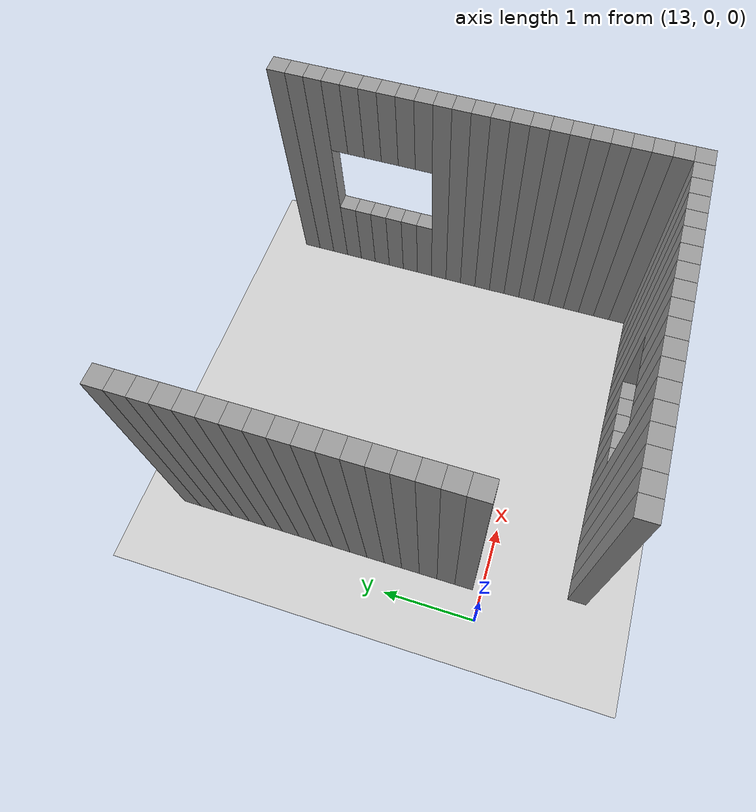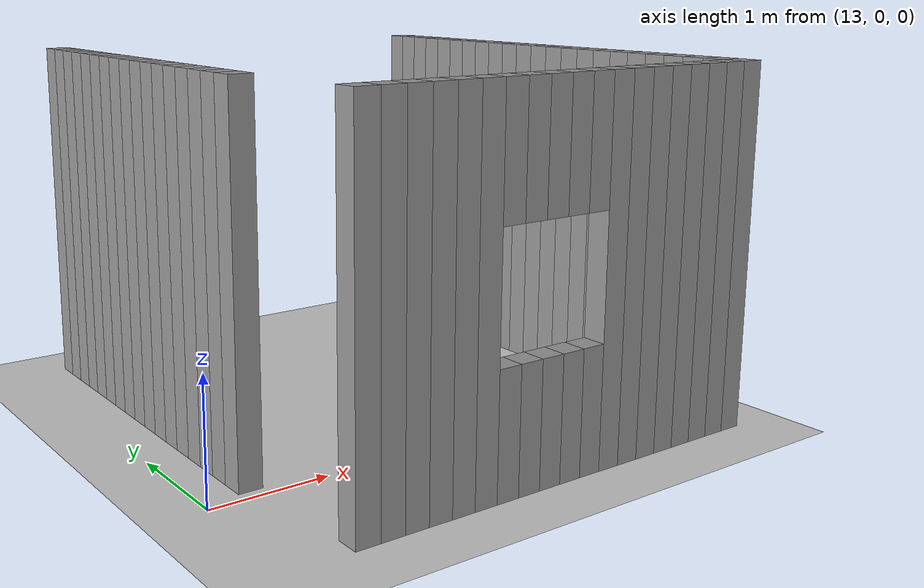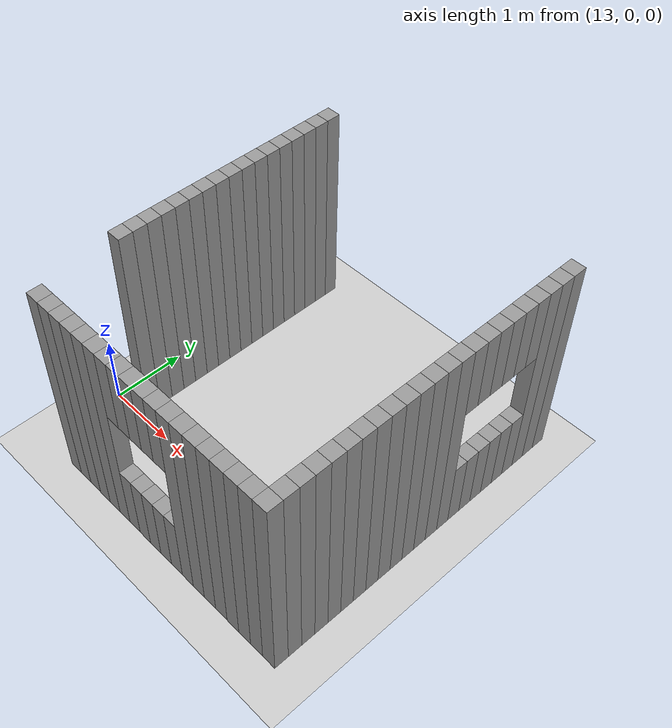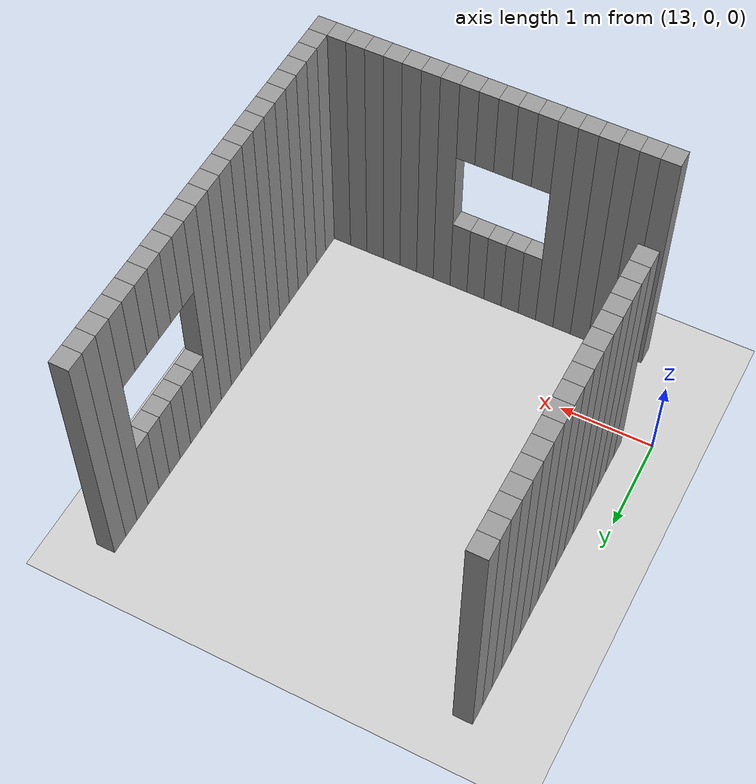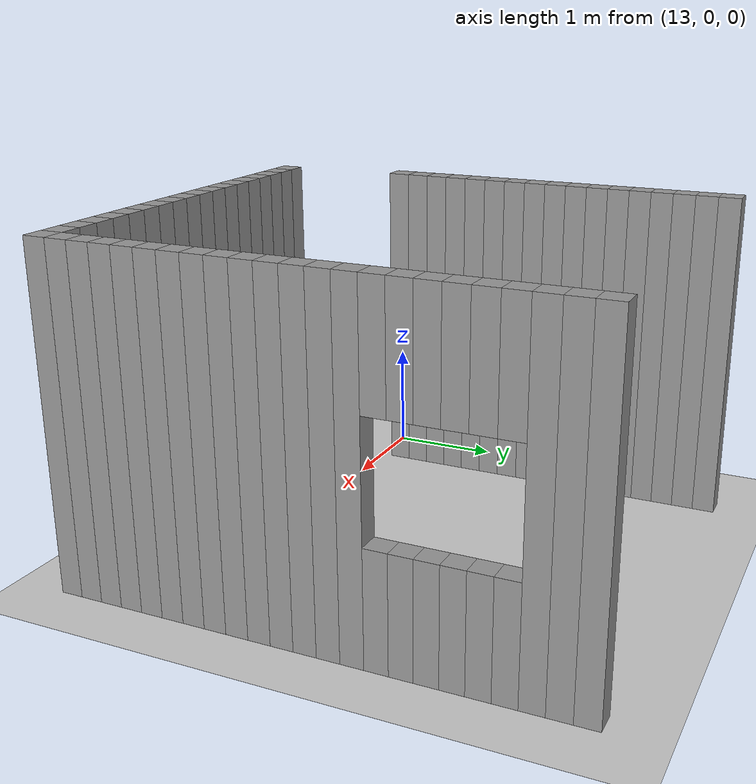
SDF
<sdf version="1.7">
 <world name="default">
  <model name="ground_plane">
   <static>1</static>
   <link name="link">
    <collision name="collision">
     <geometry><plane><normal>0 0 1</normal><size>100 100</size></plane></geometry>
     <surface>
      <contact><collide_bitmask>65535</collide_bitmask></contact>
      <friction><ode><mu>100</mu><mu2>50</mu2></ode></friction>
     </surface>
    </collision>
    <visual name="visual">
     <cast_shadows>0</cast_shadows>
     <geometry><plane><normal>0 0 1</normal><size>100 100</size></plane></geometry>
     <material>
      <script><uri>file://media/materials/scripts/gazebo.material</uri><name>Gazebo/Grey</name></script>
     </material>
    </visual>
   </link>
  </model>
  <model name="05222">
   <pose>-1 -1 0 0 -0 0</pose>
   <link name="Wall_95">
    <collision name="Wall_95_Collision">
     <geometry><box><size>0.2 0.2 3</size></box></geometry>
     <pose>0 0 1.5 0 -0 0</pose>
    </collision>
    <visual name="Wall_95_Visual">
     <pose>0 0 1.5 0 -0 0</pose>
     <geometry><box><size>0.2 0.2 3</size></box></geometry>
     <material>
      <script><uri>file://media/materials/scripts/gazebo.material</uri><name>Gazebo/Grey</name></script>
      <ambient>1 1 1 1</ambient>
     </material>
     <meta><layer>0</layer></meta>
    </visual>
    <pose>14.600000000000001 0.0 0 0 -0 0</pose>
   </link>
   <link name="Wall_96">
    <collision name="Wall_96_Collision">
     <geometry><box><size>0.2 0.2 3</size></box></geometry>
     <pose>0 0 1.5 0 -0 0</pose>
    </collision>
    <visual name="Wall_96_Visual">
     <pose>0 0 1.5 0 -0 0</pose>
     <geometry><box><size>0.2 0.2 3</size></box></geometry>
     <material>
      <script><uri>file://media/materials/scripts/gazebo.material</uri><name>Gazebo/Grey</name></script>
      <ambient>1 1 1 1</ambient>
     </material>
     <meta><layer>0</layer></meta>
    </visual>
    <pose>14.8 0.0 0 0 -0 0</pose>
   </link>
   <link name="Wall_97">
    <collision name="Wall_97_Collision">
     <geometry><box><size>0.2 0.2 3</size></box></geometry>
     <pose>0 0 1.5 0 -0 0</pose>
    </collision>
    <visual name="Wall_97_Visual">
     <pose>0 0 1.5 0 -0 0</pose>
     <geometry><box><size>0.2 0.2 3</size></box></geometry>
     <material>
      <script><uri>file://media/materials/scripts/gazebo.material</uri><name>Gazebo/Grey</name></script>
      <ambient>1 1 1 1</ambient>
     </material>
     <meta><layer>0</layer></meta>
    </visual>
    <pose>15.0 0.0 0 0 -0 0</pose>
   </link>
   <link name="Wall_98">
    <collision name="Wall_98_Collision">
     <geometry><box><size>0.2 0.2 3</size></box></geometry>
     <pose>0 0 1.5 0 -0 0</pose>
    </collision>
    <visual name="Wall_98_Visual">
     <pose>0 0 1.5 0 -0 0</pose>
     <geometry><box><size>0.2 0.2 3</size></box></geometry>
     <material>
      <script><uri>file://media/materials/scripts/gazebo.material</uri><name>Gazebo/Grey</name></script>
      <ambient>1 1 1 1</ambient>
     </material>
     <meta><layer>0</layer></meta>
    </visual>
    <pose>15.200000000000001 0.0 0 0 -0 0</pose>
   </link>
   <link name="Wall_99">
    <collision name="Wall_99_Collision">
     <geometry><box><size>0.2 0.2 3</size></box></geometry>
     <pose>0 0 1.5 0 -0 0</pose>
    </collision>
    <visual name="Wall_99_Visual">
     <pose>0 0 1.5 0 -0 0</pose>
     <geometry><box><size>0.2 0.2 3</size></box></geometry>
     <material>
      <script><uri>file://media/materials/scripts/gazebo.material</uri><name>Gazebo/Grey</name></script>
      <ambient>1 1 1 1</ambient>
     </material>
     <meta><layer>0</layer></meta>
    </visual>
    <pose>15.4 0.0 0 0 -0 0</pose>
   </link>
   <link name="Wall_100">
    <collision name="Wall_100_Collision">
     <geometry><box><size>0.2 0.2 3</size></box></geometry>
     <pose>0 0 1.5 0 -0 0</pose>
    </collision>
    <visual name="Wall_100_Visual">
     <pose>0 0 1.5 0 -0 0</pose>
     <geometry><box><size>0.2 0.2 3</size></box></geometry>
     <material>
      <script><uri>file://media/materials/scripts/gazebo.material</uri><name>Gazebo/Grey</name></script>
      <ambient>1 1 1 1</ambient>
     </material>
     <meta><layer>0</layer></meta>
    </visual>
    <pose>15.600000000000001 0.0 0 0 -0 0</pose>
   </link>
   <link name="Wall_101">
    <collision name="Wall_101_Collision">
     <geometry><box><size>0.2 0.2 1.0</size></box></geometry>
     <pose>0 0 0.5 0 -0 0</pose>
    </collision>
    <visual name="Wall_101_Visual">
     <pose>0 0 0.5 0 -0 0</pose>
     <geometry><box><size>0.2 0.2 1.0</size></box></geometry>
     <material>
      <script><uri>file://media/materials/scripts/gazebo.material</uri><name>Gazebo/Grey</name></script>
      <ambient>1 1 1 1</ambient>
     </material>
     <meta><layer>0</layer></meta>
    </visual>
    <pose>15.8 0.0 0 0 -0 0</pose>
   </link>
   <link name="Wall_102">
    <collision name="Wall_102_Collision">
     <geometry><box><size>0.2 0.2 1.0</size></box></geometry>
     <pose>0 0 2.5 0 -0 0</pose>
    </collision>
    <visual name="Wall_102_Visual">
     <pose>0 0 2.5 0 -0 0</pose>
     <geometry><box><size>0.2 0.2 1.0</size></box></geometry>
     <material>
      <script><uri>file://media/materials/scripts/gazebo.material</uri><name>Gazebo/Grey</name></script>
      <ambient>1 1 1 1</ambient>
     </material>
     <meta><layer>0</layer></meta>
    </visual>
    <pose>15.8 0.0 0 0 -0 0</pose>
   </link>
   <link name="Window_101">
    <collision name="Window_101_Collision">
     <geometry><box><size>0.2 0.2 1.0</size></box></geometry>
     <pose>0 0 1.5 0 -0 0</pose>
    </collision>
    <visual name="Wall_102_Visual">
     <pose>0 0 2.5 0 -0 0</pose>
     <geometry><box><size>0.2 0.2 1.0</size></box></geometry>
     <material>
      <script><uri>file://media/materials/scripts/gazebo.material</uri><name>Gazebo/Grey</name></script>
      <ambient>1 1 1 1</ambient>
     </material>
     <meta><layer>0</layer></meta>
    </visual>
    <pose>15.8 0.0 0 0 -0 0</pose>
   </link>
   <link name="Wall_103">
    <collision name="Wall_103_Collision">
     <geometry><box><size>0.2 0.2 1.0</size></box></geometry>
     <pose>0 0 0.5 0 -0 0</pose>
    </collision>
    <visual name="Wall_103_Visual">
     <pose>0 0 0.5 0 -0 0</pose>
     <geometry><box><size>0.2 0.2 1.0</size></box></geometry>
     <material>
      <script><uri>file://media/materials/scripts/gazebo.material</uri><name>Gazebo/Grey</name></script>
      <ambient>1 1 1 1</ambient>
     </material>
     <meta><layer>0</layer></meta>
    </visual>
    <pose>16.0 0.0 0 0 -0 0</pose>
   </link>
   <link name="Wall_104">
    <collision name="Wall_104_Collision">
     <geometry><box><size>0.2 0.2 1.0</size></box></geometry>
     <pose>0 0 2.5 0 -0 0</pose>
    </collision>
    <visual name="Wall_104_Visual">
     <pose>0 0 2.5 0 -0 0</pose>
     <geometry><box><size>0.2 0.2 1.0</size></box></geometry>
     <material>
      <script><uri>file://media/materials/scripts/gazebo.material</uri><name>Gazebo/Grey</name></script>
      <ambient>1 1 1 1</ambient>
     </material>
     <meta><layer>0</layer></meta>
    </visual>
    <pose>16.0 0.0 0 0 -0 0</pose>
   </link>
   <link name="Window_103">
    <collision name="Window_103_Collision">
     <geometry><box><size>0.2 0.2 1.0</size></box></geometry>
     <pose>0 0 1.5 0 -0 0</pose>
    </collision>
    <visual name="Wall_104_Visual">
     <pose>0 0 2.5 0 -0 0</pose>
     <geometry><box><size>0.2 0.2 1.0</size></box></geometry>
     <material>
      <script><uri>file://media/materials/scripts/gazebo.material</uri><name>Gazebo/Grey</name></script>
      <ambient>1 1 1 1</ambient>
     </material>
     <meta><layer>0</layer></meta>
    </visual>
    <pose>16.0 0.0 0 0 -0 0</pose>
   </link>
   <link name="Wall_105">
    <collision name="Wall_105_Collision">
     <geometry><box><size>0.2 0.2 1.0</size></box></geometry>
     <pose>0 0 0.5 0 -0 0</pose>
    </collision>
    <visual name="Wall_105_Visual">
     <pose>0 0 0.5 0 -0 0</pose>
     <geometry><box><size>0.2 0.2 1.0</size></box></geometry>
     <material>
      <script><uri>file://media/materials/scripts/gazebo.material</uri><name>Gazebo/Grey</name></script>
      <ambient>1 1 1 1</ambient>
     </material>
     <meta><layer>0</layer></meta>
    </visual>
    <pose>16.2 0.0 0 0 -0 0</pose>
   </link>
   <link name="Wall_106">
    <collision name="Wall_106_Collision">
     <geometry><box><size>0.2 0.2 1.0</size></box></geometry>
     <pose>0 0 2.5 0 -0 0</pose>
    </collision>
    <visual name="Wall_106_Visual">
     <pose>0 0 2.5 0 -0 0</pose>
     <geometry><box><size>0.2 0.2 1.0</size></box></geometry>
     <material>
      <script><uri>file://media/materials/scripts/gazebo.material</uri><name>Gazebo/Grey</name></script>
      <ambient>1 1 1 1</ambient>
     </material>
     <meta><layer>0</layer></meta>
    </visual>
    <pose>16.2 0.0 0 0 -0 0</pose>
   </link>
   <link name="Window_105">
    <collision name="Window_105_Collision">
     <geometry><box><size>0.2 0.2 1.0</size></box></geometry>
     <pose>0 0 1.5 0 -0 0</pose>
    </collision>
    <visual name="Wall_106_Visual">
     <pose>0 0 2.5 0 -0 0</pose>
     <geometry><box><size>0.2 0.2 1.0</size></box></geometry>
     <material>
      <script><uri>file://media/materials/scripts/gazebo.material</uri><name>Gazebo/Grey</name></script>
      <ambient>1 1 1 1</ambient>
     </material>
     <meta><layer>0</layer></meta>
    </visual>
    <pose>16.2 0.0 0 0 -0 0</pose>
   </link>
   <link name="Wall_107">
    <collision name="Wall_107_Collision">
     <geometry><box><size>0.2 0.2 1.0</size></box></geometry>
     <pose>0 0 0.5 0 -0 0</pose>
    </collision>
    <visual name="Wall_107_Visual">
     <pose>0 0 0.5 0 -0 0</pose>
     <geometry><box><size>0.2 0.2 1.0</size></box></geometry>
     <material>
      <script><uri>file://media/materials/scripts/gazebo.material</uri><name>Gazebo/Grey</name></script>
      <ambient>1 1 1 1</ambient>
     </material>
     <meta><layer>0</layer></meta>
    </visual>
    <pose>16.400000000000002 0.0 0 0 -0 0</pose>
   </link>
   <link name="Wall_108">
    <collision name="Wall_108_Collision">
     <geometry><box><size>0.2 0.2 1.0</size></box></geometry>
     <pose>0 0 2.5 0 -0 0</pose>
    </collision>
    <visual name="Wall_108_Visual">
     <pose>0 0 2.5 0 -0 0</pose>
     <geometry><box><size>0.2 0.2 1.0</size></box></geometry>
     <material>
      <script><uri>file://media/materials/scripts/gazebo.material</uri><name>Gazebo/Grey</name></script>
      <ambient>1 1 1 1</ambient>
     </material>
     <meta><layer>0</layer></meta>
    </visual>
    <pose>16.400000000000002 0.0 0 0 -0 0</pose>
   </link>
   <link name="Window_107">
    <collision name="Window_107_Collision">
     <geometry><box><size>0.2 0.2 1.0</size></box></geometry>
     <pose>0 0 1.5 0 -0 0</pose>
    </collision>
    <visual name="Wall_108_Visual">
     <pose>0 0 2.5 0 -0 0</pose>
     <geometry><box><size>0.2 0.2 1.0</size></box></geometry>
     <material>
      <script><uri>file://media/materials/scripts/gazebo.material</uri><name>Gazebo/Grey</name></script>
      <ambient>1 1 1 1</ambient>
     </material>
     <meta><layer>0</layer></meta>
    </visual>
    <pose>16.400000000000002 0.0 0 0 -0 0</pose>
   </link>
   <link name="Wall_109">
    <collision name="Wall_109_Collision">
     <geometry><box><size>0.2 0.2 1.0</size></box></geometry>
     <pose>0 0 0.5 0 -0 0</pose>
    </collision>
    <visual name="Wall_109_Visual">
     <pose>0 0 0.5 0 -0 0</pose>
     <geometry><box><size>0.2 0.2 1.0</size></box></geometry>
     <material>
      <script><uri>file://media/materials/scripts/gazebo.material</uri><name>Gazebo/Grey</name></script>
      <ambient>1 1 1 1</ambient>
     </material>
     <meta><layer>0</layer></meta>
    </visual>
    <pose>16.6 0.0 0 0 -0 0</pose>
   </link>
   <link name="Wall_110">
    <collision name="Wall_110_Collision">
     <geometry><box><size>0.2 0.2 1.0</size></box></geometry>
     <pose>0 0 2.5 0 -0 0</pose>
    </collision>
    <visual name="Wall_110_Visual">
     <pose>0 0 2.5 0 -0 0</pose>
     <geometry><box><size>0.2 0.2 1.0</size></box></geometry>
     <material>
      <script><uri>file://media/materials/scripts/gazebo.material</uri><name>Gazebo/Grey</name></script>
      <ambient>1 1 1 1</ambient>
     </material>
     <meta><layer>0</layer></meta>
    </visual>
    <pose>16.6 0.0 0 0 -0 0</pose>
   </link>
   <link name="Window_109">
    <collision name="Window_109_Collision">
     <geometry><box><size>0.2 0.2 1.0</size></box></geometry>
     <pose>0 0 1.5 0 -0 0</pose>
    </collision>
    <visual name="Wall_110_Visual">
     <pose>0 0 2.5 0 -0 0</pose>
     <geometry><box><size>0.2 0.2 1.0</size></box></geometry>
     <material>
      <script><uri>file://media/materials/scripts/gazebo.material</uri><name>Gazebo/Grey</name></script>
      <ambient>1 1 1 1</ambient>
     </material>
     <meta><layer>0</layer></meta>
    </visual>
    <pose>16.6 0.0 0 0 -0 0</pose>
   </link>
   <link name="Wall_111">
    <collision name="Wall_111_Collision">
     <geometry><box><size>0.2 0.2 3</size></box></geometry>
     <pose>0 0 1.5 0 -0 0</pose>
    </collision>
    <visual name="Wall_111_Visual">
     <pose>0 0 1.5 0 -0 0</pose>
     <geometry><box><size>0.2 0.2 3</size></box></geometry>
     <material>
      <script><uri>file://media/materials/scripts/gazebo.material</uri><name>Gazebo/Grey</name></script>
      <ambient>1 1 1 1</ambient>
     </material>
     <meta><layer>0</layer></meta>
    </visual>
    <pose>16.8 0.0 0 0 -0 0</pose>
   </link>
   <link name="Wall_112">
    <collision name="Wall_112_Collision">
     <geometry><box><size>0.2 0.2 3</size></box></geometry>
     <pose>0 0 1.5 0 -0 0</pose>
    </collision>
    <visual name="Wall_112_Visual">
     <pose>0 0 1.5 0 -0 0</pose>
     <geometry><box><size>0.2 0.2 3</size></box></geometry>
     <material>
      <script><uri>file://media/materials/scripts/gazebo.material</uri><name>Gazebo/Grey</name></script>
      <ambient>1 1 1 1</ambient>
     </material>
     <meta><layer>0</layer></meta>
    </visual>
    <pose>17.0 0.0 0 0 -0 0</pose>
   </link>
   <link name="Wall_113">
    <collision name="Wall_113_Collision">
     <geometry><box><size>0.2 0.2 3</size></box></geometry>
     <pose>0 0 1.5 0 -0 0</pose>
    </collision>
    <visual name="Wall_113_Visual">
     <pose>0 0 1.5 0 -0 0</pose>
     <geometry><box><size>0.2 0.2 3</size></box></geometry>
     <material>
      <script><uri>file://media/materials/scripts/gazebo.material</uri><name>Gazebo/Grey</name></script>
      <ambient>1 1 1 1</ambient>
     </material>
     <meta><layer>0</layer></meta>
    </visual>
    <pose>17.2 0.0 0 0 -0 0</pose>
   </link>
   <link name="Wall_114">
    <collision name="Wall_114_Collision">
     <geometry><box><size>0.2 0.2 3</size></box></geometry>
     <pose>0 0 1.5 0 -0 0</pose>
    </collision>
    <visual name="Wall_114_Visual">
     <pose>0 0 1.5 0 -0 0</pose>
     <geometry><box><size>0.2 0.2 3</size></box></geometry>
     <material>
      <script><uri>file://media/materials/scripts/gazebo.material</uri><name>Gazebo/Grey</name></script>
      <ambient>1 1 1 1</ambient>
     </material>
     <meta><layer>0</layer></meta>
    </visual>
    <pose>17.400000000000002 0.0 0 0 -0 0</pose>
   </link>
   <link name="Wall_115">
    <collision name="Wall_115_Collision">
     <geometry><box><size>0.2 0.2 3</size></box></geometry>
     <pose>0 0 1.5 0 -0 0</pose>
    </collision>
    <visual name="Wall_115_Visual">
     <pose>0 0 1.5 0 -0 0</pose>
     <geometry><box><size>0.2 0.2 3</size></box></geometry>
     <material>
      <script><uri>file://media/materials/scripts/gazebo.material</uri><name>Gazebo/Grey</name></script>
      <ambient>1 1 1 1</ambient>
     </material>
     <meta><layer>0</layer></meta>
    </visual>
    <pose>17.6 0.0 0 0 -0 0</pose>
   </link>
   <link name="Wall_116">
    <collision name="Wall_116_Collision">
     <geometry><box><size>0.2 0.2 3</size></box></geometry>
     <pose>0 0 1.5 0 -0 0</pose>
    </collision>
    <visual name="Wall_116_Visual">
     <pose>0 0 1.5 0 -0 0</pose>
     <geometry><box><size>0.2 0.2 3</size></box></geometry>
     <material>
      <script><uri>file://media/materials/scripts/gazebo.material</uri><name>Gazebo/Grey</name></script>
      <ambient>1 1 1 1</ambient>
     </material>
     <meta><layer>0</layer></meta>
    </visual>
    <pose>17.8 0.0 0 0 -0 0</pose>
   </link>
   <link name="Wall_117">
    <collision name="Wall_117_Collision">
     <geometry><box><size>0.2 0.2 3</size></box></geometry>
     <pose>0 0 1.5 0 -0 0</pose>
    </collision>
    <visual name="Wall_117_Visual">
     <pose>0 0 1.5 0 -0 0</pose>
     <geometry><box><size>0.2 0.2 3</size></box></geometry>
     <material>
      <script><uri>file://media/materials/scripts/gazebo.material</uri><name>Gazebo/Grey</name></script>
      <ambient>1 1 1 1</ambient>
     </material>
     <meta><layer>0</layer></meta>
    </visual>
    <pose>18.0 0.0 0 0 -0 0</pose>
   </link>
   <link name="Wall_118">
    <collision name="Wall_118_Collision">
     <geometry><box><size>0.2 0.2 3</size></box></geometry>
     <pose>0 0 1.5 0 -0 0</pose>
    </collision>
    <visual name="Wall_118_Visual">
     <pose>0 0 1.5 0 -0 0</pose>
     <geometry><box><size>0.2 0.2 3</size></box></geometry>
     <material>
      <script><uri>file://media/materials/scripts/gazebo.material</uri><name>Gazebo/Grey</name></script>
      <ambient>1 1 1 1</ambient>
     </material>
     <meta><layer>0</layer></meta>
    </visual>
    <pose>18.2 0.0 0 0 -0 0</pose>
   </link>
   <link name="Wall_123">
    <collision name="Wall_123_Collision">
     <geometry><box><size>0.2 0.2 3</size></box></geometry>
     <pose>0 0 1.5 0 -0 0</pose>
    </collision>
    <visual name="Wall_123_Visual">
     <pose>0 0 1.5 0 -0 0</pose>
     <geometry><box><size>0.2 0.2 3</size></box></geometry>
     <material>
      <script><uri>file://media/materials/scripts/gazebo.material</uri><name>Gazebo/Grey</name></script>
      <ambient>1 1 1 1</ambient>
     </material>
     <meta><layer>0</layer></meta>
    </visual>
    <pose>18.2 0.2 0 0 -0 0</pose>
   </link>
   <link name="Wall_128">
    <collision name="Wall_128_Collision">
     <geometry><box><size>0.2 0.2 3</size></box></geometry>
     <pose>0 0 1.5 0 -0 0</pose>
    </collision>
    <visual name="Wall_128_Visual">
     <pose>0 0 1.5 0 -0 0</pose>
     <geometry><box><size>0.2 0.2 3</size></box></geometry>
     <material>
      <script><uri>file://media/materials/scripts/gazebo.material</uri><name>Gazebo/Grey</name></script>
      <ambient>1 1 1 1</ambient>
     </material>
     <meta><layer>0</layer></meta>
    </visual>
    <pose>18.2 0.4 0 0 -0 0</pose>
   </link>
   <link name="Wall_133">
    <collision name="Wall_133_Collision">
     <geometry><box><size>0.2 0.2 3</size></box></geometry>
     <pose>0 0 1.5 0 -0 0</pose>
    </collision>
    <visual name="Wall_133_Visual">
     <pose>0 0 1.5 0 -0 0</pose>
     <geometry><box><size>0.2 0.2 3</size></box></geometry>
     <material>
      <script><uri>file://media/materials/scripts/gazebo.material</uri><name>Gazebo/Grey</name></script>
      <ambient>1 1 1 1</ambient>
     </material>
     <meta><layer>0</layer></meta>
    </visual>
    <pose>18.2 0.6000000000000001 0 0 -0 0</pose>
   </link>
   <link name="Wall_138">
    <collision name="Wall_138_Collision">
     <geometry><box><size>0.2 0.2 3</size></box></geometry>
     <pose>0 0 1.5 0 -0 0</pose>
    </collision>
    <visual name="Wall_138_Visual">
     <pose>0 0 1.5 0 -0 0</pose>
     <geometry><box><size>0.2 0.2 3</size></box></geometry>
     <material>
      <script><uri>file://media/materials/scripts/gazebo.material</uri><name>Gazebo/Grey</name></script>
      <ambient>1 1 1 1</ambient>
     </material>
     <meta><layer>0</layer></meta>
    </visual>
    <pose>18.2 0.8 0 0 -0 0</pose>
   </link>
   <link name="Wall_143">
    <collision name="Wall_143_Collision">
     <geometry><box><size>0.2 0.2 3</size></box></geometry>
     <pose>0 0 1.5 0 -0 0</pose>
    </collision>
    <visual name="Wall_143_Visual">
     <pose>0 0 1.5 0 -0 0</pose>
     <geometry><box><size>0.2 0.2 3</size></box></geometry>
     <material>
      <script><uri>file://media/materials/scripts/gazebo.material</uri><name>Gazebo/Grey</name></script>
      <ambient>1 1 1 1</ambient>
     </material>
     <meta><layer>0</layer></meta>
    </visual>
    <pose>18.2 1.0 0 0 -0 0</pose>
   </link>
   <link name="Wall_147">
    <collision name="Wall_147_Collision">
     <geometry><box><size>0.2 0.2 3</size></box></geometry>
     <pose>0 0 1.5 0 -0 0</pose>
    </collision>
    <visual name="Wall_147_Visual">
     <pose>0 0 1.5 0 -0 0</pose>
     <geometry><box><size>0.2 0.2 3</size></box></geometry>
     <material>
      <script><uri>file://media/materials/scripts/gazebo.material</uri><name>Gazebo/Grey</name></script>
      <ambient>1 1 1 1</ambient>
     </material>
     <meta><layer>0</layer></meta>
    </visual>
    <pose>14.4 1.2000000000000002 0 0 -0 0</pose>
   </link>
   <link name="Wall_148">
    <collision name="Wall_148_Collision">
     <geometry><box><size>0.2 0.2 3</size></box></geometry>
     <pose>0 0 1.5 0 -0 0</pose>
    </collision>
    <visual name="Wall_148_Visual">
     <pose>0 0 1.5 0 -0 0</pose>
     <geometry><box><size>0.2 0.2 3</size></box></geometry>
     <material>
      <script><uri>file://media/materials/scripts/gazebo.material</uri><name>Gazebo/Grey</name></script>
      <ambient>1 1 1 1</ambient>
     </material>
     <meta><layer>0</layer></meta>
    </visual>
    <pose>18.2 1.2000000000000002 0 0 -0 0</pose>
   </link>
   <link name="Wall_152">
    <collision name="Wall_152_Collision">
     <geometry><box><size>0.2 0.2 3</size></box></geometry>
     <pose>0 0 1.5 0 -0 0</pose>
    </collision>
    <visual name="Wall_152_Visual">
     <pose>0 0 1.5 0 -0 0</pose>
     <geometry><box><size>0.2 0.2 3</size></box></geometry>
     <material>
      <script><uri>file://media/materials/scripts/gazebo.material</uri><name>Gazebo/Grey</name></script>
      <ambient>1 1 1 1</ambient>
     </material>
     <meta><layer>0</layer></meta>
    </visual>
    <pose>14.4 1.4000000000000001 0 0 -0 0</pose>
   </link>
   <link name="Wall_153">
    <collision name="Wall_153_Collision">
     <geometry><box><size>0.2 0.2 3</size></box></geometry>
     <pose>0 0 1.5 0 -0 0</pose>
    </collision>
    <visual name="Wall_153_Visual">
     <pose>0 0 1.5 0 -0 0</pose>
     <geometry><box><size>0.2 0.2 3</size></box></geometry>
     <material>
      <script><uri>file://media/materials/scripts/gazebo.material</uri><name>Gazebo/Grey</name></script>
      <ambient>1 1 1 1</ambient>
     </material>
     <meta><layer>0</layer></meta>
    </visual>
    <pose>18.2 1.4000000000000001 0 0 -0 0</pose>
   </link>
   <link name="Wall_158">
    <collision name="Wall_158_Collision">
     <geometry><box><size>0.2 0.2 3</size></box></geometry>
     <pose>0 0 1.5 0 -0 0</pose>
    </collision>
    <visual name="Wall_158_Visual">
     <pose>0 0 1.5 0 -0 0</pose>
     <geometry><box><size>0.2 0.2 3</size></box></geometry>
     <material>
      <script><uri>file://media/materials/scripts/gazebo.material</uri><name>Gazebo/Grey</name></script>
      <ambient>1 1 1 1</ambient>
     </material>
     <meta><layer>0</layer></meta>
    </visual>
    <pose>14.4 1.6 0 0 -0 0</pose>
   </link>
   <link name="Wall_159">
    <collision name="Wall_159_Collision">
     <geometry><box><size>0.2 0.2 3</size></box></geometry>
     <pose>0 0 1.5 0 -0 0</pose>
    </collision>
    <visual name="Wall_159_Visual">
     <pose>0 0 1.5 0 -0 0</pose>
     <geometry><box><size>0.2 0.2 3</size></box></geometry>
     <material>
      <script><uri>file://media/materials/scripts/gazebo.material</uri><name>Gazebo/Grey</name></script>
      <ambient>1 1 1 1</ambient>
     </material>
     <meta><layer>0</layer></meta>
    </visual>
    <pose>18.2 1.6 0 0 -0 0</pose>
   </link>
   <link name="Wall_164">
    <collision name="Wall_164_Collision">
     <geometry><box><size>0.2 0.2 3</size></box></geometry>
     <pose>0 0 1.5 0 -0 0</pose>
    </collision>
    <visual name="Wall_164_Visual">
     <pose>0 0 1.5 0 -0 0</pose>
     <geometry><box><size>0.2 0.2 3</size></box></geometry>
     <material>
      <script><uri>file://media/materials/scripts/gazebo.material</uri><name>Gazebo/Grey</name></script>
      <ambient>1 1 1 1</ambient>
     </material>
     <meta><layer>0</layer></meta>
    </visual>
    <pose>14.4 1.8 0 0 -0 0</pose>
   </link>
   <link name="Wall_165">
    <collision name="Wall_165_Collision">
     <geometry><box><size>0.2 0.2 3</size></box></geometry>
     <pose>0 0 1.5 0 -0 0</pose>
    </collision>
    <visual name="Wall_165_Visual">
     <pose>0 0 1.5 0 -0 0</pose>
     <geometry><box><size>0.2 0.2 3</size></box></geometry>
     <material>
      <script><uri>file://media/materials/scripts/gazebo.material</uri><name>Gazebo/Grey</name></script>
      <ambient>1 1 1 1</ambient>
     </material>
     <meta><layer>0</layer></meta>
    </visual>
    <pose>18.2 1.8 0 0 -0 0</pose>
   </link>
   <link name="Wall_170">
    <collision name="Wall_170_Collision">
     <geometry><box><size>0.2 0.2 3</size></box></geometry>
     <pose>0 0 1.5 0 -0 0</pose>
    </collision>
    <visual name="Wall_170_Visual">
     <pose>0 0 1.5 0 -0 0</pose>
     <geometry><box><size>0.2 0.2 3</size></box></geometry>
     <material>
      <script><uri>file://media/materials/scripts/gazebo.material</uri><name>Gazebo/Grey</name></script>
      <ambient>1 1 1 1</ambient>
     </material>
     <meta><layer>0</layer></meta>
    </visual>
    <pose>14.4 2.0 0 0 -0 0</pose>
   </link>
   <link name="Wall_171">
    <collision name="Wall_171_Collision">
     <geometry><box><size>0.2 0.2 3</size></box></geometry>
     <pose>0 0 1.5 0 -0 0</pose>
    </collision>
    <visual name="Wall_171_Visual">
     <pose>0 0 1.5 0 -0 0</pose>
     <geometry><box><size>0.2 0.2 3</size></box></geometry>
     <material>
      <script><uri>file://media/materials/scripts/gazebo.material</uri><name>Gazebo/Grey</name></script>
      <ambient>1 1 1 1</ambient>
     </material>
     <meta><layer>0</layer></meta>
    </visual>
    <pose>18.2 2.0 0 0 -0 0</pose>
   </link>
   <link name="Wall_176">
    <collision name="Wall_176_Collision">
     <geometry><box><size>0.2 0.2 3</size></box></geometry>
     <pose>0 0 1.5 0 -0 0</pose>
    </collision>
    <visual name="Wall_176_Visual">
     <pose>0 0 1.5 0 -0 0</pose>
     <geometry><box><size>0.2 0.2 3</size></box></geometry>
     <material>
      <script><uri>file://media/materials/scripts/gazebo.material</uri><name>Gazebo/Grey</name></script>
      <ambient>1 1 1 1</ambient>
     </material>
     <meta><layer>0</layer></meta>
    </visual>
    <pose>14.4 2.2 0 0 -0 0</pose>
   </link>
   <link name="Wall_177">
    <collision name="Wall_177_Collision">
     <geometry><box><size>0.2 0.2 3</size></box></geometry>
     <pose>0 0 1.5 0 -0 0</pose>
    </collision>
    <visual name="Wall_177_Visual">
     <pose>0 0 1.5 0 -0 0</pose>
     <geometry><box><size>0.2 0.2 3</size></box></geometry>
     <material>
      <script><uri>file://media/materials/scripts/gazebo.material</uri><name>Gazebo/Grey</name></script>
      <ambient>1 1 1 1</ambient>
     </material>
     <meta><layer>0</layer></meta>
    </visual>
    <pose>18.2 2.2 0 0 -0 0</pose>
   </link>
   <link name="Wall_182">
    <collision name="Wall_182_Collision">
     <geometry><box><size>0.2 0.2 3</size></box></geometry>
     <pose>0 0 1.5 0 -0 0</pose>
    </collision>
    <visual name="Wall_182_Visual">
     <pose>0 0 1.5 0 -0 0</pose>
     <geometry><box><size>0.2 0.2 3</size></box></geometry>
     <material>
      <script><uri>file://media/materials/scripts/gazebo.material</uri><name>Gazebo/Grey</name></script>
      <ambient>1 1 1 1</ambient>
     </material>
     <meta><layer>0</layer></meta>
    </visual>
    <pose>14.4 2.4000000000000004 0 0 -0 0</pose>
   </link>
   <link name="Wall_183">
    <collision name="Wall_183_Collision">
     <geometry><box><size>0.2 0.2 3</size></box></geometry>
     <pose>0 0 1.5 0 -0 0</pose>
    </collision>
    <visual name="Wall_183_Visual">
     <pose>0 0 1.5 0 -0 0</pose>
     <geometry><box><size>0.2 0.2 3</size></box></geometry>
     <material>
      <script><uri>file://media/materials/scripts/gazebo.material</uri><name>Gazebo/Grey</name></script>
      <ambient>1 1 1 1</ambient>
     </material>
     <meta><layer>0</layer></meta>
    </visual>
    <pose>18.2 2.4000000000000004 0 0 -0 0</pose>
   </link>
   <link name="Wall_188">
    <collision name="Wall_188_Collision">
     <geometry><box><size>0.2 0.2 3</size></box></geometry>
     <pose>0 0 1.5 0 -0 0</pose>
    </collision>
    <visual name="Wall_188_Visual">
     <pose>0 0 1.5 0 -0 0</pose>
     <geometry><box><size>0.2 0.2 3</size></box></geometry>
     <material>
      <script><uri>file://media/materials/scripts/gazebo.material</uri><name>Gazebo/Grey</name></script>
      <ambient>1 1 1 1</ambient>
     </material>
     <meta><layer>0</layer></meta>
    </visual>
    <pose>14.4 2.6 0 0 -0 0</pose>
   </link>
   <link name="Wall_189">
    <collision name="Wall_189_Collision">
     <geometry><box><size>0.2 0.2 3</size></box></geometry>
     <pose>0 0 1.5 0 -0 0</pose>
    </collision>
    <visual name="Wall_189_Visual">
     <pose>0 0 1.5 0 -0 0</pose>
     <geometry><box><size>0.2 0.2 3</size></box></geometry>
     <material>
      <script><uri>file://media/materials/scripts/gazebo.material</uri><name>Gazebo/Grey</name></script>
      <ambient>1 1 1 1</ambient>
     </material>
     <meta><layer>0</layer></meta>
    </visual>
    <pose>18.2 2.6 0 0 -0 0</pose>
   </link>
   <link name="Wall_194">
    <collision name="Wall_194_Collision">
     <geometry><box><size>0.2 0.2 3</size></box></geometry>
     <pose>0 0 1.5 0 -0 0</pose>
    </collision>
    <visual name="Wall_194_Visual">
     <pose>0 0 1.5 0 -0 0</pose>
     <geometry><box><size>0.2 0.2 3</size></box></geometry>
     <material>
      <script><uri>file://media/materials/scripts/gazebo.material</uri><name>Gazebo/Grey</name></script>
      <ambient>1 1 1 1</ambient>
     </material>
     <meta><layer>0</layer></meta>
    </visual>
    <pose>14.4 2.8000000000000003 0 0 -0 0</pose>
   </link>
   <link name="Wall_195">
    <collision name="Wall_195_Collision">
     <geometry><box><size>0.2 0.2 1.0</size></box></geometry>
     <pose>0 0 0.5 0 -0 0</pose>
    </collision>
    <visual name="Wall_195_Visual">
     <pose>0 0 0.5 0 -0 0</pose>
     <geometry><box><size>0.2 0.2 1.0</size></box></geometry>
     <material>
      <script><uri>file://media/materials/scripts/gazebo.material</uri><name>Gazebo/Grey</name></script>
      <ambient>1 1 1 1</ambient>
     </material>
     <meta><layer>0</layer></meta>
    </visual>
    <pose>18.2 2.8000000000000003 0 0 -0 0</pose>
   </link>
   <link name="Wall_196">
    <collision name="Wall_196_Collision">
     <geometry><box><size>0.2 0.2 1.0</size></box></geometry>
     <pose>0 0 2.5 0 -0 0</pose>
    </collision>
    <visual name="Wall_196_Visual">
     <pose>0 0 2.5 0 -0 0</pose>
     <geometry><box><size>0.2 0.2 1.0</size></box></geometry>
     <material>
      <script><uri>file://media/materials/scripts/gazebo.material</uri><name>Gazebo/Grey</name></script>
      <ambient>1 1 1 1</ambient>
     </material>
     <meta><layer>0</layer></meta>
    </visual>
    <pose>18.2 2.8000000000000003 0 0 -0 0</pose>
   </link>
   <link name="Window_195">
    <collision name="Window_195_Collision">
     <geometry><box><size>0.2 0.2 1.0</size></box></geometry>
     <pose>0 0 1.5 0 -0 0</pose>
    </collision>
    <visual name="Wall_196_Visual">
     <pose>0 0 2.5 0 -0 0</pose>
     <geometry><box><size>0.2 0.2 1.0</size></box></geometry>
     <material>
      <script><uri>file://media/materials/scripts/gazebo.material</uri><name>Gazebo/Grey</name></script>
      <ambient>1 1 1 1</ambient>
     </material>
     <meta><layer>0</layer></meta>
    </visual>
    <pose>18.2 2.8000000000000003 0 0 -0 0</pose>
   </link>
   <link name="Wall_201">
    <collision name="Wall_201_Collision">
     <geometry><box><size>0.2 0.2 3</size></box></geometry>
     <pose>0 0 1.5 0 -0 0</pose>
    </collision>
    <visual name="Wall_201_Visual">
     <pose>0 0 1.5 0 -0 0</pose>
     <geometry><box><size>0.2 0.2 3</size></box></geometry>
     <material>
      <script><uri>file://media/materials/scripts/gazebo.material</uri><name>Gazebo/Grey</name></script>
      <ambient>1 1 1 1</ambient>
     </material>
     <meta><layer>0</layer></meta>
    </visual>
    <pose>14.4 3.0 0 0 -0 0</pose>
   </link>
   <link name="Wall_202">
    <collision name="Wall_202_Collision">
     <geometry><box><size>0.2 0.2 1.0</size></box></geometry>
     <pose>0 0 0.5 0 -0 0</pose>
    </collision>
    <visual name="Wall_202_Visual">
     <pose>0 0 0.5 0 -0 0</pose>
     <geometry><box><size>0.2 0.2 1.0</size></box></geometry>
     <material>
      <script><uri>file://media/materials/scripts/gazebo.material</uri><name>Gazebo/Grey</name></script>
      <ambient>1 1 1 1</ambient>
     </material>
     <meta><layer>0</layer></meta>
    </visual>
    <pose>18.2 3.0 0 0 -0 0</pose>
   </link>
   <link name="Wall_203">
    <collision name="Wall_203_Collision">
     <geometry><box><size>0.2 0.2 1.0</size></box></geometry>
     <pose>0 0 2.5 0 -0 0</pose>
    </collision>
    <visual name="Wall_203_Visual">
     <pose>0 0 2.5 0 -0 0</pose>
     <geometry><box><size>0.2 0.2 1.0</size></box></geometry>
     <material>
      <script><uri>file://media/materials/scripts/gazebo.material</uri><name>Gazebo/Grey</name></script>
      <ambient>1 1 1 1</ambient>
     </material>
     <meta><layer>0</layer></meta>
    </visual>
    <pose>18.2 3.0 0 0 -0 0</pose>
   </link>
   <link name="Window_202">
    <collision name="Window_202_Collision">
     <geometry><box><size>0.2 0.2 1.0</size></box></geometry>
     <pose>0 0 1.5 0 -0 0</pose>
    </collision>
    <visual name="Wall_203_Visual">
     <pose>0 0 2.5 0 -0 0</pose>
     <geometry><box><size>0.2 0.2 1.0</size></box></geometry>
     <material>
      <script><uri>file://media/materials/scripts/gazebo.material</uri><name>Gazebo/Grey</name></script>
      <ambient>1 1 1 1</ambient>
     </material>
     <meta><layer>0</layer></meta>
    </visual>
    <pose>18.2 3.0 0 0 -0 0</pose>
   </link>
   <link name="Wall_207">
    <collision name="Wall_207_Collision">
     <geometry><box><size>0.2 0.2 3</size></box></geometry>
     <pose>0 0 1.5 0 -0 0</pose>
    </collision>
    <visual name="Wall_207_Visual">
     <pose>0 0 1.5 0 -0 0</pose>
     <geometry><box><size>0.2 0.2 3</size></box></geometry>
     <material>
      <script><uri>file://media/materials/scripts/gazebo.material</uri><name>Gazebo/Grey</name></script>
      <ambient>1 1 1 1</ambient>
     </material>
     <meta><layer>0</layer></meta>
    </visual>
    <pose>14.4 3.2 0 0 -0 0</pose>
   </link>
   <link name="Wall_208">
    <collision name="Wall_208_Collision">
     <geometry><box><size>0.2 0.2 1.0</size></box></geometry>
     <pose>0 0 0.5 0 -0 0</pose>
    </collision>
    <visual name="Wall_208_Visual">
     <pose>0 0 0.5 0 -0 0</pose>
     <geometry><box><size>0.2 0.2 1.0</size></box></geometry>
     <material>
      <script><uri>file://media/materials/scripts/gazebo.material</uri><name>Gazebo/Grey</name></script>
      <ambient>1 1 1 1</ambient>
     </material>
     <meta><layer>0</layer></meta>
    </visual>
    <pose>18.2 3.2 0 0 -0 0</pose>
   </link>
   <link name="Wall_209">
    <collision name="Wall_209_Collision">
     <geometry><box><size>0.2 0.2 1.0</size></box></geometry>
     <pose>0 0 2.5 0 -0 0</pose>
    </collision>
    <visual name="Wall_209_Visual">
     <pose>0 0 2.5 0 -0 0</pose>
     <geometry><box><size>0.2 0.2 1.0</size></box></geometry>
     <material>
      <script><uri>file://media/materials/scripts/gazebo.material</uri><name>Gazebo/Grey</name></script>
      <ambient>1 1 1 1</ambient>
     </material>
     <meta><layer>0</layer></meta>
    </visual>
    <pose>18.2 3.2 0 0 -0 0</pose>
   </link>
   <link name="Window_208">
    <collision name="Window_208_Collision">
     <geometry><box><size>0.2 0.2 1.0</size></box></geometry>
     <pose>0 0 1.5 0 -0 0</pose>
    </collision>
    <visual name="Wall_209_Visual">
     <pose>0 0 2.5 0 -0 0</pose>
     <geometry><box><size>0.2 0.2 1.0</size></box></geometry>
     <material>
      <script><uri>file://media/materials/scripts/gazebo.material</uri><name>Gazebo/Grey</name></script>
      <ambient>1 1 1 1</ambient>
     </material>
     <meta><layer>0</layer></meta>
    </visual>
    <pose>18.2 3.2 0 0 -0 0</pose>
   </link>
   <link name="Wall_213">
    <collision name="Wall_213_Collision">
     <geometry><box><size>0.2 0.2 3</size></box></geometry>
     <pose>0 0 1.5 0 -0 0</pose>
    </collision>
    <visual name="Wall_213_Visual">
     <pose>0 0 1.5 0 -0 0</pose>
     <geometry><box><size>0.2 0.2 3</size></box></geometry>
     <material>
      <script><uri>file://media/materials/scripts/gazebo.material</uri><name>Gazebo/Grey</name></script>
      <ambient>1 1 1 1</ambient>
     </material>
     <meta><layer>0</layer></meta>
    </visual>
    <pose>14.4 3.4000000000000004 0 0 -0 0</pose>
   </link>
   <link name="Wall_214">
    <collision name="Wall_214_Collision">
     <geometry><box><size>0.2 0.2 1.0</size></box></geometry>
     <pose>0 0 0.5 0 -0 0</pose>
    </collision>
    <visual name="Wall_214_Visual">
     <pose>0 0 0.5 0 -0 0</pose>
     <geometry><box><size>0.2 0.2 1.0</size></box></geometry>
     <material>
      <script><uri>file://media/materials/scripts/gazebo.material</uri><name>Gazebo/Grey</name></script>
      <ambient>1 1 1 1</ambient>
     </material>
     <meta><layer>0</layer></meta>
    </visual>
    <pose>18.2 3.4000000000000004 0 0 -0 0</pose>
   </link>
   <link name="Wall_215">
    <collision name="Wall_215_Collision">
     <geometry><box><size>0.2 0.2 1.0</size></box></geometry>
     <pose>0 0 2.5 0 -0 0</pose>
    </collision>
    <visual name="Wall_215_Visual">
     <pose>0 0 2.5 0 -0 0</pose>
     <geometry><box><size>0.2 0.2 1.0</size></box></geometry>
     <material>
      <script><uri>file://media/materials/scripts/gazebo.material</uri><name>Gazebo/Grey</name></script>
      <ambient>1 1 1 1</ambient>
     </material>
     <meta><layer>0</layer></meta>
    </visual>
    <pose>18.2 3.4000000000000004 0 0 -0 0</pose>
   </link>
   <link name="Window_214">
    <collision name="Window_214_Collision">
     <geometry><box><size>0.2 0.2 1.0</size></box></geometry>
     <pose>0 0 1.5 0 -0 0</pose>
    </collision>
    <visual name="Wall_215_Visual">
     <pose>0 0 2.5 0 -0 0</pose>
     <geometry><box><size>0.2 0.2 1.0</size></box></geometry>
     <material>
      <script><uri>file://media/materials/scripts/gazebo.material</uri><name>Gazebo/Grey</name></script>
      <ambient>1 1 1 1</ambient>
     </material>
     <meta><layer>0</layer></meta>
    </visual>
    <pose>18.2 3.4000000000000004 0 0 -0 0</pose>
   </link>
   <link name="Wall_219">
    <collision name="Wall_219_Collision">
     <geometry><box><size>0.2 0.2 3</size></box></geometry>
     <pose>0 0 1.5 0 -0 0</pose>
    </collision>
    <visual name="Wall_219_Visual">
     <pose>0 0 1.5 0 -0 0</pose>
     <geometry><box><size>0.2 0.2 3</size></box></geometry>
     <material>
      <script><uri>file://media/materials/scripts/gazebo.material</uri><name>Gazebo/Grey</name></script>
      <ambient>1 1 1 1</ambient>
     </material>
     <meta><layer>0</layer></meta>
    </visual>
    <pose>14.4 3.6 0 0 -0 0</pose>
   </link>
   <link name="Wall_220">
    <collision name="Wall_220_Collision">
     <geometry><box><size>0.2 0.2 1.0</size></box></geometry>
     <pose>0 0 0.5 0 -0 0</pose>
    </collision>
    <visual name="Wall_220_Visual">
     <pose>0 0 0.5 0 -0 0</pose>
     <geometry><box><size>0.2 0.2 1.0</size></box></geometry>
     <material>
      <script><uri>file://media/materials/scripts/gazebo.material</uri><name>Gazebo/Grey</name></script>
      <ambient>1 1 1 1</ambient>
     </material>
     <meta><layer>0</layer></meta>
    </visual>
    <pose>18.2 3.6 0 0 -0 0</pose>
   </link>
   <link name="Wall_221">
    <collision name="Wall_221_Collision">
     <geometry><box><size>0.2 0.2 1.0</size></box></geometry>
     <pose>0 0 2.5 0 -0 0</pose>
    </collision>
    <visual name="Wall_221_Visual">
     <pose>0 0 2.5 0 -0 0</pose>
     <geometry><box><size>0.2 0.2 1.0</size></box></geometry>
     <material>
      <script><uri>file://media/materials/scripts/gazebo.material</uri><name>Gazebo/Grey</name></script>
      <ambient>1 1 1 1</ambient>
     </material>
     <meta><layer>0</layer></meta>
    </visual>
    <pose>18.2 3.6 0 0 -0 0</pose>
   </link>
   <link name="Window_220">
    <collision name="Window_220_Collision">
     <geometry><box><size>0.2 0.2 1.0</size></box></geometry>
     <pose>0 0 1.5 0 -0 0</pose>
    </collision>
    <visual name="Wall_221_Visual">
     <pose>0 0 2.5 0 -0 0</pose>
     <geometry><box><size>0.2 0.2 1.0</size></box></geometry>
     <material>
      <script><uri>file://media/materials/scripts/gazebo.material</uri><name>Gazebo/Grey</name></script>
      <ambient>1 1 1 1</ambient>
     </material>
     <meta><layer>0</layer></meta>
    </visual>
    <pose>18.2 3.6 0 0 -0 0</pose>
   </link>
   <link name="Wall_225">
    <collision name="Wall_225_Collision">
     <geometry><box><size>0.2 0.2 3</size></box></geometry>
     <pose>0 0 1.5 0 -0 0</pose>
    </collision>
    <visual name="Wall_225_Visual">
     <pose>0 0 1.5 0 -0 0</pose>
     <geometry><box><size>0.2 0.2 3</size></box></geometry>
     <material>
      <script><uri>file://media/materials/scripts/gazebo.material</uri><name>Gazebo/Grey</name></script>
      <ambient>1 1 1 1</ambient>
     </material>
     <meta><layer>0</layer></meta>
    </visual>
    <pose>14.4 3.8000000000000003 0 0 -0 0</pose>
   </link>
   <link name="Wall_226">
    <collision name="Wall_226_Collision">
     <geometry><box><size>0.2 0.2 1.0</size></box></geometry>
     <pose>0 0 0.5 0 -0 0</pose>
    </collision>
    <visual name="Wall_226_Visual">
     <pose>0 0 0.5 0 -0 0</pose>
     <geometry><box><size>0.2 0.2 1.0</size></box></geometry>
     <material>
      <script><uri>file://media/materials/scripts/gazebo.material</uri><name>Gazebo/Grey</name></script>
      <ambient>1 1 1 1</ambient>
     </material>
     <meta><layer>0</layer></meta>
    </visual>
    <pose>18.2 3.8000000000000003 0 0 -0 0</pose>
   </link>
   <link name="Wall_227">
    <collision name="Wall_227_Collision">
     <geometry><box><size>0.2 0.2 1.0</size></box></geometry>
     <pose>0 0 2.5 0 -0 0</pose>
    </collision>
    <visual name="Wall_227_Visual">
     <pose>0 0 2.5 0 -0 0</pose>
     <geometry><box><size>0.2 0.2 1.0</size></box></geometry>
     <material>
      <script><uri>file://media/materials/scripts/gazebo.material</uri><name>Gazebo/Grey</name></script>
      <ambient>1 1 1 1</ambient>
     </material>
     <meta><layer>0</layer></meta>
    </visual>
    <pose>18.2 3.8000000000000003 0 0 -0 0</pose>
   </link>
   <link name="Window_226">
    <collision name="Window_226_Collision">
     <geometry><box><size>0.2 0.2 1.0</size></box></geometry>
     <pose>0 0 1.5 0 -0 0</pose>
    </collision>
    <visual name="Wall_227_Visual">
     <pose>0 0 2.5 0 -0 0</pose>
     <geometry><box><size>0.2 0.2 1.0</size></box></geometry>
     <material>
      <script><uri>file://media/materials/scripts/gazebo.material</uri><name>Gazebo/Grey</name></script>
      <ambient>1 1 1 1</ambient>
     </material>
     <meta><layer>0</layer></meta>
    </visual>
    <pose>18.2 3.8000000000000003 0 0 -0 0</pose>
   </link>
   <link name="Wall_231">
    <collision name="Wall_231_Collision">
     <geometry><box><size>0.2 0.2 3</size></box></geometry>
     <pose>0 0 1.5 0 -0 0</pose>
    </collision>
    <visual name="Wall_231_Visual">
     <pose>0 0 1.5 0 -0 0</pose>
     <geometry><box><size>0.2 0.2 3</size></box></geometry>
     <material>
      <script><uri>file://media/materials/scripts/gazebo.material</uri><name>Gazebo/Grey</name></script>
      <ambient>1 1 1 1</ambient>
     </material>
     <meta><layer>0</layer></meta>
    </visual>
    <pose>14.4 4.0 0 0 -0 0</pose>
   </link>
   <link name="Wall_232">
    <collision name="Wall_232_Collision">
     <geometry><box><size>0.2 0.2 3</size></box></geometry>
     <pose>0 0 1.5 0 -0 0</pose>
    </collision>
    <visual name="Wall_232_Visual">
     <pose>0 0 1.5 0 -0 0</pose>
     <geometry><box><size>0.2 0.2 3</size></box></geometry>
     <material>
      <script><uri>file://media/materials/scripts/gazebo.material</uri><name>Gazebo/Grey</name></script>
      <ambient>1 1 1 1</ambient>
     </material>
     <meta><layer>0</layer></meta>
    </visual>
    <pose>18.2 4.0 0 0 -0 0</pose>
   </link>
   <link name="Wall_236">
    <collision name="Wall_236_Collision">
     <geometry><box><size>0.2 0.2 3</size></box></geometry>
     <pose>0 0 1.5 0 -0 0</pose>
    </collision>
    <visual name="Wall_236_Visual">
     <pose>0 0 1.5 0 -0 0</pose>
     <geometry><box><size>0.2 0.2 3</size></box></geometry>
     <material>
      <script><uri>file://media/materials/scripts/gazebo.material</uri><name>Gazebo/Grey</name></script>
      <ambient>1 1 1 1</ambient>
     </material>
     <meta><layer>0</layer></meta>
    </visual>
    <pose>14.4 4.2 0 0 -0 0</pose>
   </link>
   <link name="Wall_237">
    <collision name="Wall_237_Collision">
     <geometry><box><size>0.2 0.2 3</size></box></geometry>
     <pose>0 0 1.5 0 -0 0</pose>
    </collision>
    <visual name="Wall_237_Visual">
     <pose>0 0 1.5 0 -0 0</pose>
     <geometry><box><size>0.2 0.2 3</size></box></geometry>
     <material>
      <script><uri>file://media/materials/scripts/gazebo.material</uri><name>Gazebo/Grey</name></script>
      <ambient>1 1 1 1</ambient>
     </material>
     <meta><layer>0</layer></meta>
    </visual>
    <pose>18.2 4.2 0 0 -0 0</pose>
   </link>
   <link name="Wall_284">
    <collision name="Wall_284_Collision">
     <geometry><box><size>0.2 0.2 3</size></box></geometry>
     <pose>0 0 1.5 0 -0 0</pose>
    </collision>
    <visual name="Wall_284_Visual">
     <pose>0 0 1.5 0 -0 0</pose>
     <geometry><box><size>0.2 0.2 3</size></box></geometry>
     <material>
      <script><uri>file://media/materials/scripts/gazebo.material</uri><name>Gazebo/Grey</name></script>
      <ambient>1 1 1 1</ambient>
     </material>
     <meta><layer>0</layer></meta>
    </visual>
    <pose>14.4 4.4 0 0 -0 0</pose>
   </link>
   <link name="Wall_285">
    <collision name="Wall_285_Collision">
     <geometry><box><size>0.2 0.2 3</size></box></geometry>
     <pose>0 0 1.5 0 -0 0</pose>
    </collision>
    <visual name="Wall_285_Visual">
     <pose>0 0 1.5 0 -0 0</pose>
     <geometry><box><size>0.2 0.2 3</size></box></geometry>
     <material>
      <script><uri>file://media/materials/scripts/gazebo.material</uri><name>Gazebo/Grey</name></script>
      <ambient>1 1 1 1</ambient>
     </material>
     <meta><layer>0</layer></meta>
    </visual>
    <pose>18.2 4.4 0 0 -0 0</pose>
   </link>
   <static>1</static>
  </model>
 </world>
</sdf>
